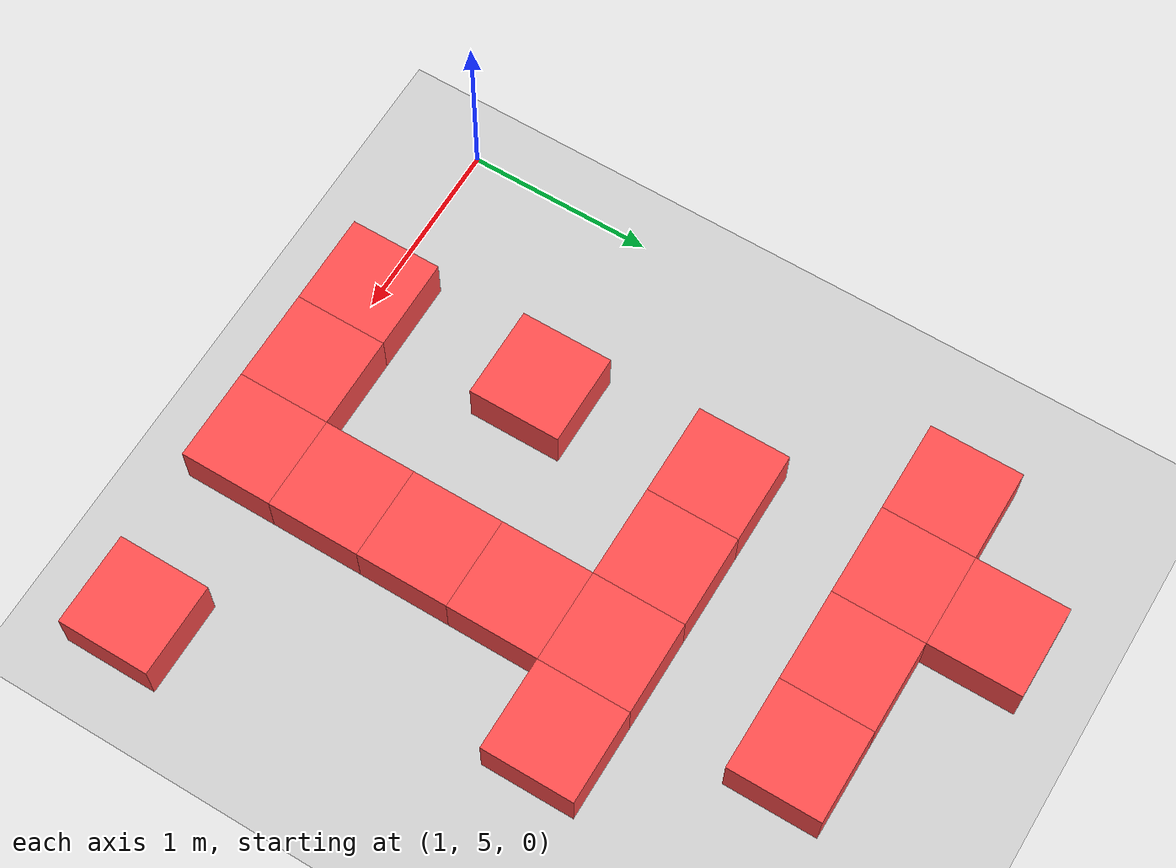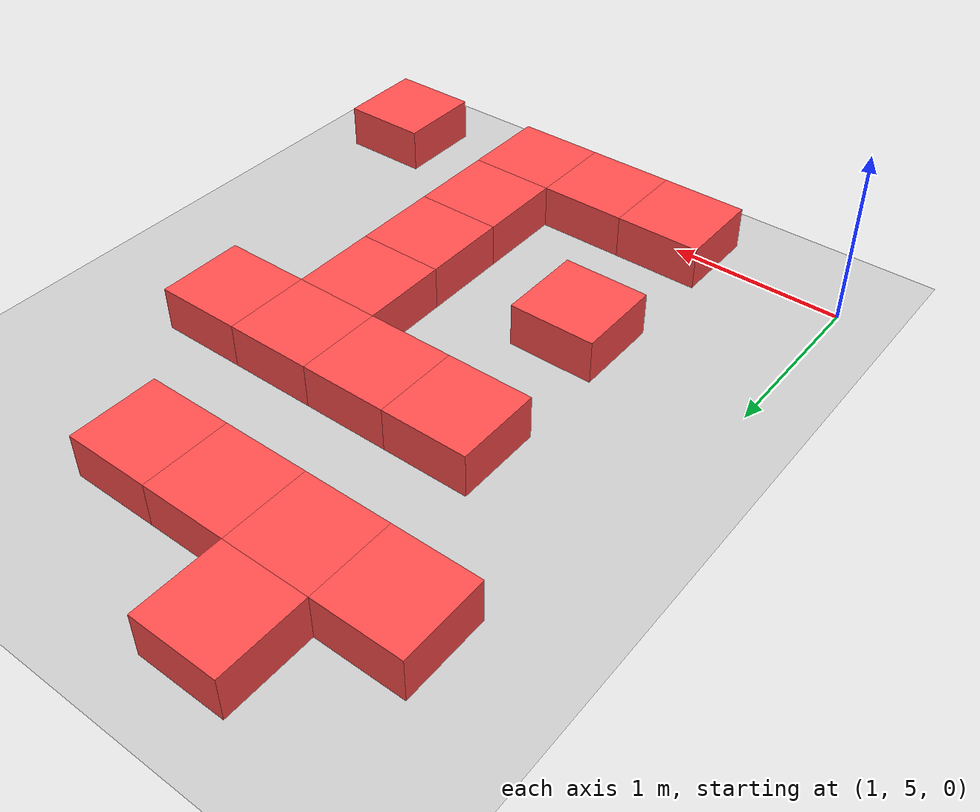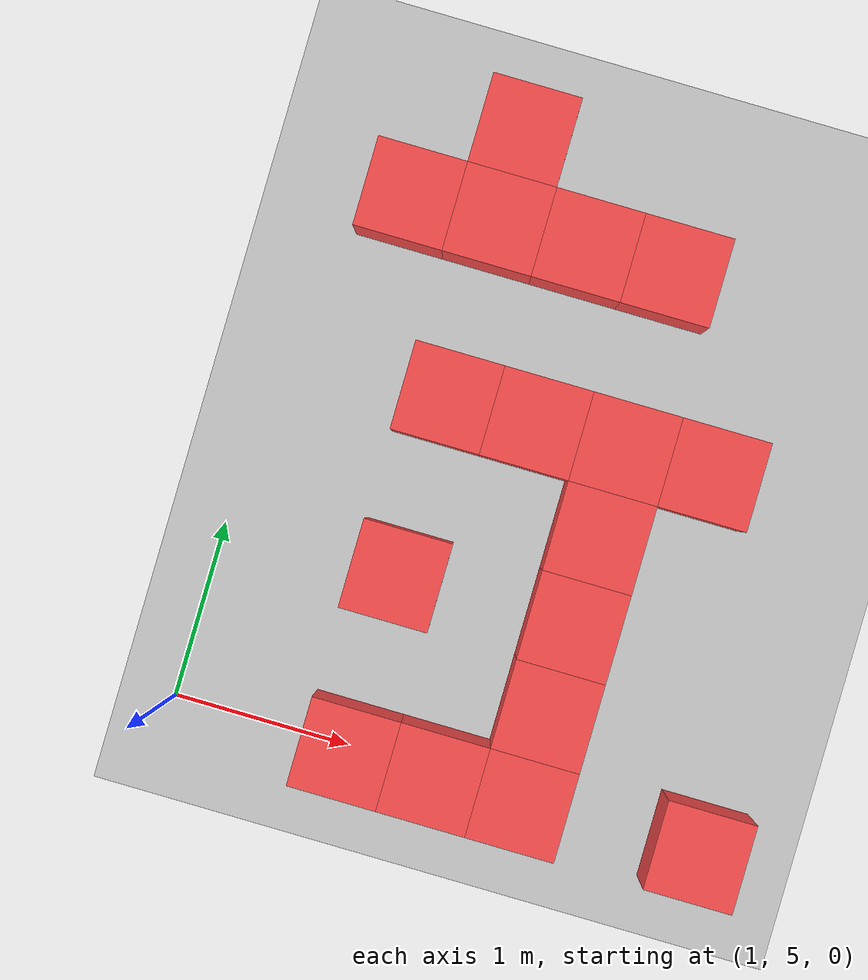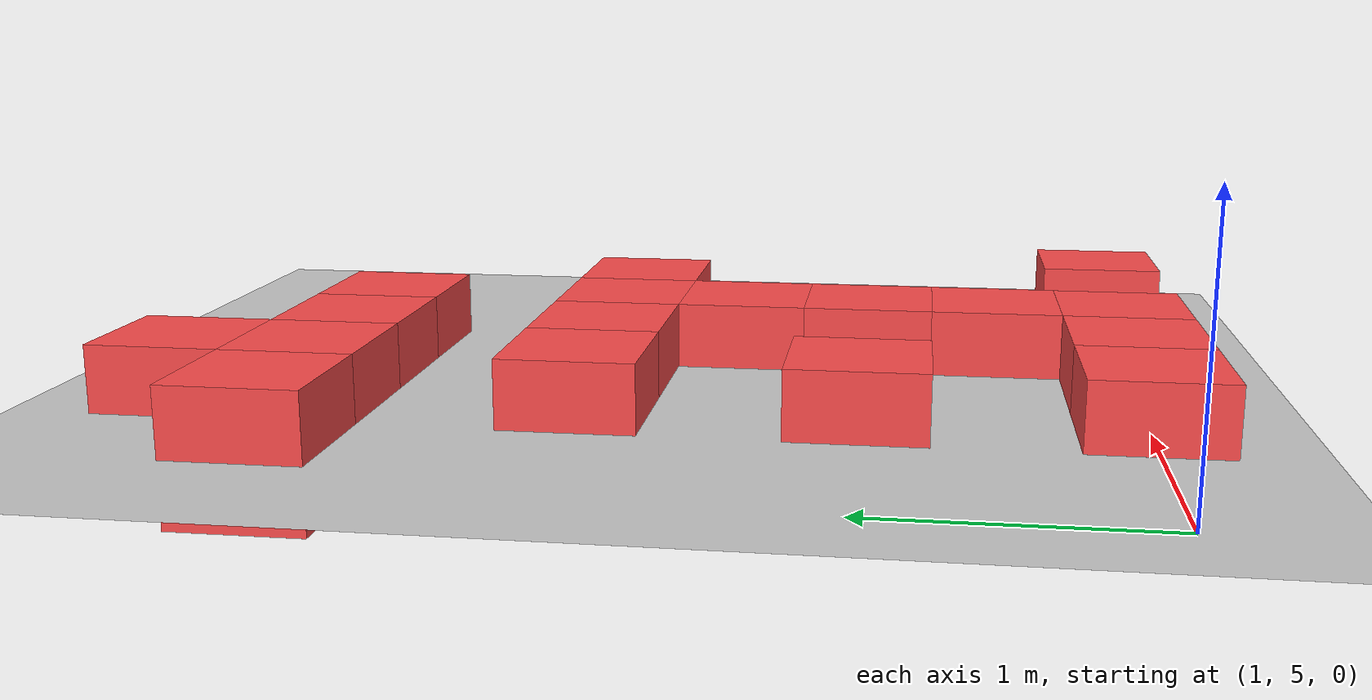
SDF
<sdf version="1.6">
 <world name="default">
  <model name="ground_plane">
   <static>1</static>
   <link name="link">
    <collision name="collision">
     <geometry><plane><normal>0 0 1</normal><size>100 100</size></plane></geometry>
     <surface><friction><ode><mu>100</mu><mu2>50</mu2></ode></friction></surface>
    </collision>
    <visual name="visual">
     <cast_shadows>0</cast_shadows>
     <geometry><plane><normal>0 0 1</normal><size>100 100</size></plane></geometry>
     <material>
      <script><uri>file://media/materials/scripts/gazebo.material</uri><name>Gazebo/Grey</name></script>
     </material>
    </visual>
   </link>
  </model>
  <model name="Box_Red_91">
   <link name="link_0">
    <inertial>
     <mass>1</mass>
     <inertia>
      <ixx>0.166667</ixx>
      <ixy>0</ixy>
      <ixz>0</ixz>
      <iyy>0.166667</iyy>
      <iyz>0</iyz>
      <izz>0.166667</izz>
     </inertia>
    </inertial>
    <visual name="visual">
     <geometry><box><size>0.5 0.5 0.5</size></box></geometry>
     <material>
      <lighting>1</lighting>
      <script><uri>file://media/materials/scripts/gazebo.material</uri><name>Gazebo/Grey</name></script>
      <ambient>1 0.3 0.3 1</ambient>
      <diffuse>0.7 0.7 0.7 1</diffuse>
      <specular>0.01 0.01 0.01 1</specular>
      <emissive>0 0 0 1</emissive>
      <shader type="vertex"><normal_map>__default__</normal_map></shader>
     </material>
    </visual>
    <collision name="collision">
     <geometry><box><size>0.5 0.5 0.5</size></box></geometry>
     <surface>
      <friction>
       <ode><mu>1</mu><mu2>1</mu2><fdir1>0 0 0</fdir1><slip1>0</slip1><slip2>0</slip2></ode>
       <torsional>
        <coefficient>1</coefficient>
        <patch_radius>0</patch_radius>
        <surface_radius>0</surface_radius>
        <use_patch_radius>1</use_patch_radius>
        <ode><slip>0</slip></ode>
       </torsional>
      </friction>
      <bounce><restitution_coefficient>0</restitution_coefficient><threshold>1e+06</threshold></bounce>
      <contact>
       <collide_without_contact>0</collide_without_contact>
       <collide_without_contact_bitmask>1</collide_without_contact_bitmask>
       <collide_bitmask>1</collide_bitmask>
       <ode>
        <soft_cfm>0</soft_cfm>
        <soft_erp>0.2</soft_erp>
        <kp>1e+13</kp>
        <kd>1</kd>
        <max_vel>0.01</max_vel>
        <min_depth>0</min_depth>
       </ode>
       <bullet>
        <split_impulse>1</split_impulse>
        <split_impulse_penetration_threshold>-0.01</split_impulse_penetration_threshold>
        <soft_cfm>0</soft_cfm>
        <soft_erp>0.2</soft_erp>
        <kp>1e+13</kp>
        <kd>1</kd>
       </bullet>
      </contact>
     </surface>
    </collision>
   </link>
   <static>0</static>
   <pose>1.500 8.000 0.000 0 0 0</pose>
  </model>
  <model name="Box_Red_110">
   <link name="link_0">
    <inertial>
     <mass>1</mass>
     <inertia>
      <ixx>0.166667</ixx>
      <ixy>0</ixy>
      <ixz>0</ixz>
      <iyy>0.166667</iyy>
      <iyz>0</iyz>
      <izz>0.166667</izz>
     </inertia>
    </inertial>
    <visual name="visual">
     <geometry><box><size>0.5 0.5 0.5</size></box></geometry>
     <material>
      <lighting>1</lighting>
      <script><uri>file://media/materials/scripts/gazebo.material</uri><name>Gazebo/Grey</name></script>
      <ambient>1 0.3 0.3 1</ambient>
      <diffuse>0.7 0.7 0.7 1</diffuse>
      <specular>0.01 0.01 0.01 1</specular>
      <emissive>0 0 0 1</emissive>
      <shader type="vertex"><normal_map>__default__</normal_map></shader>
     </material>
    </visual>
    <collision name="collision">
     <geometry><box><size>0.5 0.5 0.5</size></box></geometry>
     <surface>
      <friction>
       <ode><mu>1</mu><mu2>1</mu2><fdir1>0 0 0</fdir1><slip1>0</slip1><slip2>0</slip2></ode>
       <torsional>
        <coefficient>1</coefficient>
        <patch_radius>0</patch_radius>
        <surface_radius>0</surface_radius>
        <use_patch_radius>1</use_patch_radius>
        <ode><slip>0</slip></ode>
       </torsional>
      </friction>
      <bounce><restitution_coefficient>0</restitution_coefficient><threshold>1e+06</threshold></bounce>
      <contact>
       <collide_without_contact>0</collide_without_contact>
       <collide_without_contact_bitmask>1</collide_without_contact_bitmask>
       <collide_bitmask>1</collide_bitmask>
       <ode>
        <soft_cfm>0</soft_cfm>
        <soft_erp>0.2</soft_erp>
        <kp>1e+13</kp>
        <kd>1</kd>
        <max_vel>0.01</max_vel>
        <min_depth>0</min_depth>
       </ode>
       <bullet>
        <split_impulse>1</split_impulse>
        <split_impulse_penetration_threshold>-0.01</split_impulse_penetration_threshold>
        <soft_cfm>0</soft_cfm>
        <soft_erp>0.2</soft_erp>
        <kp>1e+13</kp>
        <kd>1</kd>
       </bullet>
      </contact>
     </surface>
    </collision>
   </link>
   <static>0</static>
   <pose>2.000 5.000 0.000 0 0 0</pose>
  </model>
  <model name="Box_Red_112">
   <link name="link_0">
    <inertial>
     <mass>1</mass>
     <inertia>
      <ixx>0.166667</ixx>
      <ixy>0</ixy>
      <ixz>0</ixz>
      <iyy>0.166667</iyy>
      <iyz>0</iyz>
      <izz>0.166667</izz>
     </inertia>
    </inertial>
    <visual name="visual">
     <geometry><box><size>0.5 0.5 0.5</size></box></geometry>
     <material>
      <lighting>1</lighting>
      <script><uri>file://media/materials/scripts/gazebo.material</uri><name>Gazebo/Grey</name></script>
      <ambient>1 0.3 0.3 1</ambient>
      <diffuse>0.7 0.7 0.7 1</diffuse>
      <specular>0.01 0.01 0.01 1</specular>
      <emissive>0 0 0 1</emissive>
      <shader type="vertex"><normal_map>__default__</normal_map></shader>
     </material>
    </visual>
    <collision name="collision">
     <geometry><box><size>0.5 0.5 0.5</size></box></geometry>
     <surface>
      <friction>
       <ode><mu>1</mu><mu2>1</mu2><fdir1>0 0 0</fdir1><slip1>0</slip1><slip2>0</slip2></ode>
       <torsional>
        <coefficient>1</coefficient>
        <patch_radius>0</patch_radius>
        <surface_radius>0</surface_radius>
        <use_patch_radius>1</use_patch_radius>
        <ode><slip>0</slip></ode>
       </torsional>
      </friction>
      <bounce><restitution_coefficient>0</restitution_coefficient><threshold>1e+06</threshold></bounce>
      <contact>
       <collide_without_contact>0</collide_without_contact>
       <collide_without_contact_bitmask>1</collide_without_contact_bitmask>
       <collide_bitmask>1</collide_bitmask>
       <ode>
        <soft_cfm>0</soft_cfm>
        <soft_erp>0.2</soft_erp>
        <kp>1e+13</kp>
        <kd>1</kd>
        <max_vel>0.01</max_vel>
        <min_depth>0</min_depth>
       </ode>
       <bullet>
        <split_impulse>1</split_impulse>
        <split_impulse_penetration_threshold>-0.01</split_impulse_penetration_threshold>
        <soft_cfm>0</soft_cfm>
        <soft_erp>0.2</soft_erp>
        <kp>1e+13</kp>
        <kd>1</kd>
       </bullet>
      </contact>
     </surface>
    </collision>
   </link>
   <static>0</static>
   <pose>2.000 6.000 0.000 0 0 0</pose>
  </model>
  <model name="Box_Red_114">
   <link name="link_0">
    <inertial>
     <mass>1</mass>
     <inertia>
      <ixx>0.166667</ixx>
      <ixy>0</ixy>
      <ixz>0</ixz>
      <iyy>0.166667</iyy>
      <iyz>0</iyz>
      <izz>0.166667</izz>
     </inertia>
    </inertial>
    <visual name="visual">
     <geometry><box><size>0.5 0.5 0.5</size></box></geometry>
     <material>
      <lighting>1</lighting>
      <script><uri>file://media/materials/scripts/gazebo.material</uri><name>Gazebo/Grey</name></script>
      <ambient>1 0.3 0.3 1</ambient>
      <diffuse>0.7 0.7 0.7 1</diffuse>
      <specular>0.01 0.01 0.01 1</specular>
      <emissive>0 0 0 1</emissive>
      <shader type="vertex"><normal_map>__default__</normal_map></shader>
     </material>
    </visual>
    <collision name="collision">
     <geometry><box><size>0.5 0.5 0.5</size></box></geometry>
     <surface>
      <friction>
       <ode><mu>1</mu><mu2>1</mu2><fdir1>0 0 0</fdir1><slip1>0</slip1><slip2>0</slip2></ode>
       <torsional>
        <coefficient>1</coefficient>
        <patch_radius>0</patch_radius>
        <surface_radius>0</surface_radius>
        <use_patch_radius>1</use_patch_radius>
        <ode><slip>0</slip></ode>
       </torsional>
      </friction>
      <bounce><restitution_coefficient>0</restitution_coefficient><threshold>1e+06</threshold></bounce>
      <contact>
       <collide_without_contact>0</collide_without_contact>
       <collide_without_contact_bitmask>1</collide_without_contact_bitmask>
       <collide_bitmask>1</collide_bitmask>
       <ode>
        <soft_cfm>0</soft_cfm>
        <soft_erp>0.2</soft_erp>
        <kp>1e+13</kp>
        <kd>1</kd>
        <max_vel>0.01</max_vel>
        <min_depth>0</min_depth>
       </ode>
       <bullet>
        <split_impulse>1</split_impulse>
        <split_impulse_penetration_threshold>-0.01</split_impulse_penetration_threshold>
        <soft_cfm>0</soft_cfm>
        <soft_erp>0.2</soft_erp>
        <kp>1e+13</kp>
        <kd>1</kd>
       </bullet>
      </contact>
     </surface>
    </collision>
   </link>
   <static>0</static>
   <pose>2.000 7.000 0.000 0 0 0</pose>
  </model>
  <model name="Box_Red_116">
   <link name="link_0">
    <inertial>
     <mass>1</mass>
     <inertia>
      <ixx>0.166667</ixx>
      <ixy>0</ixy>
      <ixz>0</ixz>
      <iyy>0.166667</iyy>
      <iyz>0</iyz>
      <izz>0.166667</izz>
     </inertia>
    </inertial>
    <visual name="visual">
     <geometry><box><size>0.5 0.5 0.5</size></box></geometry>
     <material>
      <lighting>1</lighting>
      <script><uri>file://media/materials/scripts/gazebo.material</uri><name>Gazebo/Grey</name></script>
      <ambient>1 0.3 0.3 1</ambient>
      <diffuse>0.7 0.7 0.7 1</diffuse>
      <specular>0.01 0.01 0.01 1</specular>
      <emissive>0 0 0 1</emissive>
      <shader type="vertex"><normal_map>__default__</normal_map></shader>
     </material>
    </visual>
    <collision name="collision">
     <geometry><box><size>0.5 0.5 0.5</size></box></geometry>
     <surface>
      <friction>
       <ode><mu>1</mu><mu2>1</mu2><fdir1>0 0 0</fdir1><slip1>0</slip1><slip2>0</slip2></ode>
       <torsional>
        <coefficient>1</coefficient>
        <patch_radius>0</patch_radius>
        <surface_radius>0</surface_radius>
        <use_patch_radius>1</use_patch_radius>
        <ode><slip>0</slip></ode>
       </torsional>
      </friction>
      <bounce><restitution_coefficient>0</restitution_coefficient><threshold>1e+06</threshold></bounce>
      <contact>
       <collide_without_contact>0</collide_without_contact>
       <collide_without_contact_bitmask>1</collide_without_contact_bitmask>
       <collide_bitmask>1</collide_bitmask>
       <ode>
        <soft_cfm>0</soft_cfm>
        <soft_erp>0.2</soft_erp>
        <kp>1e+13</kp>
        <kd>1</kd>
        <max_vel>0.01</max_vel>
        <min_depth>0</min_depth>
       </ode>
       <bullet>
        <split_impulse>1</split_impulse>
        <split_impulse_penetration_threshold>-0.01</split_impulse_penetration_threshold>
        <soft_cfm>0</soft_cfm>
        <soft_erp>0.2</soft_erp>
        <kp>1e+13</kp>
        <kd>1</kd>
       </bullet>
      </contact>
     </surface>
    </collision>
   </link>
   <static>0</static>
   <pose>2.000 8.000 0.000 0 0 0</pose>
  </model>
  <model name="Box_Red_117">
   <link name="link_0">
    <inertial>
     <mass>1</mass>
     <inertia>
      <ixx>0.166667</ixx>
      <ixy>0</ixy>
      <ixz>0</ixz>
      <iyy>0.166667</iyy>
      <iyz>0</iyz>
      <izz>0.166667</izz>
     </inertia>
    </inertial>
    <visual name="visual">
     <geometry><box><size>0.5 0.5 0.5</size></box></geometry>
     <material>
      <lighting>1</lighting>
      <script><uri>file://media/materials/scripts/gazebo.material</uri><name>Gazebo/Grey</name></script>
      <ambient>1 0.3 0.3 1</ambient>
      <diffuse>0.7 0.7 0.7 1</diffuse>
      <specular>0.01 0.01 0.01 1</specular>
      <emissive>0 0 0 1</emissive>
      <shader type="vertex"><normal_map>__default__</normal_map></shader>
     </material>
    </visual>
    <collision name="collision">
     <geometry><box><size>0.5 0.5 0.5</size></box></geometry>
     <surface>
      <friction>
       <ode><mu>1</mu><mu2>1</mu2><fdir1>0 0 0</fdir1><slip1>0</slip1><slip2>0</slip2></ode>
       <torsional>
        <coefficient>1</coefficient>
        <patch_radius>0</patch_radius>
        <surface_radius>0</surface_radius>
        <use_patch_radius>1</use_patch_radius>
        <ode><slip>0</slip></ode>
       </torsional>
      </friction>
      <bounce><restitution_coefficient>0</restitution_coefficient><threshold>1e+06</threshold></bounce>
      <contact>
       <collide_without_contact>0</collide_without_contact>
       <collide_without_contact_bitmask>1</collide_without_contact_bitmask>
       <collide_bitmask>1</collide_bitmask>
       <ode>
        <soft_cfm>0</soft_cfm>
        <soft_erp>0.2</soft_erp>
        <kp>1e+13</kp>
        <kd>1</kd>
        <max_vel>0.01</max_vel>
        <min_depth>0</min_depth>
       </ode>
       <bullet>
        <split_impulse>1</split_impulse>
        <split_impulse_penetration_threshold>-0.01</split_impulse_penetration_threshold>
        <soft_cfm>0</soft_cfm>
        <soft_erp>0.2</soft_erp>
        <kp>1e+13</kp>
        <kd>1</kd>
       </bullet>
      </contact>
     </surface>
    </collision>
   </link>
   <static>0</static>
   <pose>2.000 8.500 0.000 0 0 0</pose>
  </model>
  <model name="Box_Red_135">
   <link name="link_0">
    <inertial>
     <mass>1</mass>
     <inertia>
      <ixx>0.166667</ixx>
      <ixy>0</ixy>
      <ixz>0</ixz>
      <iyy>0.166667</iyy>
      <iyz>0</iyz>
      <izz>0.166667</izz>
     </inertia>
    </inertial>
    <visual name="visual">
     <geometry><box><size>0.5 0.5 0.5</size></box></geometry>
     <material>
      <lighting>1</lighting>
      <script><uri>file://media/materials/scripts/gazebo.material</uri><name>Gazebo/Grey</name></script>
      <ambient>1 0.3 0.3 1</ambient>
      <diffuse>0.7 0.7 0.7 1</diffuse>
      <specular>0.01 0.01 0.01 1</specular>
      <emissive>0 0 0 1</emissive>
      <shader type="vertex"><normal_map>__default__</normal_map></shader>
     </material>
    </visual>
    <collision name="collision">
     <geometry><box><size>0.5 0.5 0.5</size></box></geometry>
     <surface>
      <friction>
       <ode><mu>1</mu><mu2>1</mu2><fdir1>0 0 0</fdir1><slip1>0</slip1><slip2>0</slip2></ode>
       <torsional>
        <coefficient>1</coefficient>
        <patch_radius>0</patch_radius>
        <surface_radius>0</surface_radius>
        <use_patch_radius>1</use_patch_radius>
        <ode><slip>0</slip></ode>
       </torsional>
      </friction>
      <bounce><restitution_coefficient>0</restitution_coefficient><threshold>1e+06</threshold></bounce>
      <contact>
       <collide_without_contact>0</collide_without_contact>
       <collide_without_contact_bitmask>1</collide_without_contact_bitmask>
       <collide_bitmask>1</collide_bitmask>
       <ode>
        <soft_cfm>0</soft_cfm>
        <soft_erp>0.2</soft_erp>
        <kp>1e+13</kp>
        <kd>1</kd>
        <max_vel>0.01</max_vel>
        <min_depth>0</min_depth>
       </ode>
       <bullet>
        <split_impulse>1</split_impulse>
        <split_impulse_penetration_threshold>-0.01</split_impulse_penetration_threshold>
        <soft_cfm>0</soft_cfm>
        <soft_erp>0.2</soft_erp>
        <kp>1e+13</kp>
        <kd>1</kd>
       </bullet>
      </contact>
     </surface>
    </collision>
   </link>
   <static>0</static>
   <pose>2.500 5.000 0.000 0 0 0</pose>
  </model>
  <model name="Box_Red_139">
   <link name="link_0">
    <inertial>
     <mass>1</mass>
     <inertia>
      <ixx>0.166667</ixx>
      <ixy>0</ixy>
      <ixz>0</ixz>
      <iyy>0.166667</iyy>
      <iyz>0</iyz>
      <izz>0.166667</izz>
     </inertia>
    </inertial>
    <visual name="visual">
     <geometry><box><size>0.5 0.5 0.5</size></box></geometry>
     <material>
      <lighting>1</lighting>
      <script><uri>file://media/materials/scripts/gazebo.material</uri><name>Gazebo/Grey</name></script>
      <ambient>1 0.3 0.3 1</ambient>
      <diffuse>0.7 0.7 0.7 1</diffuse>
      <specular>0.01 0.01 0.01 1</specular>
      <emissive>0 0 0 1</emissive>
      <shader type="vertex"><normal_map>__default__</normal_map></shader>
     </material>
    </visual>
    <collision name="collision">
     <geometry><box><size>0.5 0.5 0.5</size></box></geometry>
     <surface>
      <friction>
       <ode><mu>1</mu><mu2>1</mu2><fdir1>0 0 0</fdir1><slip1>0</slip1><slip2>0</slip2></ode>
       <torsional>
        <coefficient>1</coefficient>
        <patch_radius>0</patch_radius>
        <surface_radius>0</surface_radius>
        <use_patch_radius>1</use_patch_radius>
        <ode><slip>0</slip></ode>
       </torsional>
      </friction>
      <bounce><restitution_coefficient>0</restitution_coefficient><threshold>1e+06</threshold></bounce>
      <contact>
       <collide_without_contact>0</collide_without_contact>
       <collide_without_contact_bitmask>1</collide_without_contact_bitmask>
       <collide_bitmask>1</collide_bitmask>
       <ode>
        <soft_cfm>0</soft_cfm>
        <soft_erp>0.2</soft_erp>
        <kp>1e+13</kp>
        <kd>1</kd>
        <max_vel>0.01</max_vel>
        <min_depth>0</min_depth>
       </ode>
       <bullet>
        <split_impulse>1</split_impulse>
        <split_impulse_penetration_threshold>-0.01</split_impulse_penetration_threshold>
        <soft_cfm>0</soft_cfm>
        <soft_erp>0.2</soft_erp>
        <kp>1e+13</kp>
        <kd>1</kd>
       </bullet>
      </contact>
     </surface>
    </collision>
   </link>
   <static>0</static>
   <pose>2.500 7.000 0.000 0 0 0</pose>
  </model>
  <model name="Box_Red_141">
   <link name="link_0">
    <inertial>
     <mass>1</mass>
     <inertia>
      <ixx>0.166667</ixx>
      <ixy>0</ixy>
      <ixz>0</ixz>
      <iyy>0.166667</iyy>
      <iyz>0</iyz>
      <izz>0.166667</izz>
     </inertia>
    </inertial>
    <visual name="visual">
     <geometry><box><size>0.5 0.5 0.5</size></box></geometry>
     <material>
      <lighting>1</lighting>
      <script><uri>file://media/materials/scripts/gazebo.material</uri><name>Gazebo/Grey</name></script>
      <ambient>1 0.3 0.3 1</ambient>
      <diffuse>0.7 0.7 0.7 1</diffuse>
      <specular>0.01 0.01 0.01 1</specular>
      <emissive>0 0 0 1</emissive>
      <shader type="vertex"><normal_map>__default__</normal_map></shader>
     </material>
    </visual>
    <collision name="collision">
     <geometry><box><size>0.5 0.5 0.5</size></box></geometry>
     <surface>
      <friction>
       <ode><mu>1</mu><mu2>1</mu2><fdir1>0 0 0</fdir1><slip1>0</slip1><slip2>0</slip2></ode>
       <torsional>
        <coefficient>1</coefficient>
        <patch_radius>0</patch_radius>
        <surface_radius>0</surface_radius>
        <use_patch_radius>1</use_patch_radius>
        <ode><slip>0</slip></ode>
       </torsional>
      </friction>
      <bounce><restitution_coefficient>0</restitution_coefficient><threshold>1e+06</threshold></bounce>
      <contact>
       <collide_without_contact>0</collide_without_contact>
       <collide_without_contact_bitmask>1</collide_without_contact_bitmask>
       <collide_bitmask>1</collide_bitmask>
       <ode>
        <soft_cfm>0</soft_cfm>
        <soft_erp>0.2</soft_erp>
        <kp>1e+13</kp>
        <kd>1</kd>
        <max_vel>0.01</max_vel>
        <min_depth>0</min_depth>
       </ode>
       <bullet>
        <split_impulse>1</split_impulse>
        <split_impulse_penetration_threshold>-0.01</split_impulse_penetration_threshold>
        <soft_cfm>0</soft_cfm>
        <soft_erp>0.2</soft_erp>
        <kp>1e+13</kp>
        <kd>1</kd>
       </bullet>
      </contact>
     </surface>
    </collision>
   </link>
   <static>0</static>
   <pose>2.500 8.000 0.000 0 0 0</pose>
  </model>
  <model name="Box_Red_160">
   <link name="link_0">
    <inertial>
     <mass>1</mass>
     <inertia>
      <ixx>0.166667</ixx>
      <ixy>0</ixy>
      <ixz>0</ixz>
      <iyy>0.166667</iyy>
      <iyz>0</iyz>
      <izz>0.166667</izz>
     </inertia>
    </inertial>
    <visual name="visual">
     <geometry><box><size>0.5 0.5 0.5</size></box></geometry>
     <material>
      <lighting>1</lighting>
      <script><uri>file://media/materials/scripts/gazebo.material</uri><name>Gazebo/Grey</name></script>
      <ambient>1 0.3 0.3 1</ambient>
      <diffuse>0.7 0.7 0.7 1</diffuse>
      <specular>0.01 0.01 0.01 1</specular>
      <emissive>0 0 0 1</emissive>
      <shader type="vertex"><normal_map>__default__</normal_map></shader>
     </material>
    </visual>
    <collision name="collision">
     <geometry><box><size>0.5 0.5 0.5</size></box></geometry>
     <surface>
      <friction>
       <ode><mu>1</mu><mu2>1</mu2><fdir1>0 0 0</fdir1><slip1>0</slip1><slip2>0</slip2></ode>
       <torsional>
        <coefficient>1</coefficient>
        <patch_radius>0</patch_radius>
        <surface_radius>0</surface_radius>
        <use_patch_radius>1</use_patch_radius>
        <ode><slip>0</slip></ode>
       </torsional>
      </friction>
      <bounce><restitution_coefficient>0</restitution_coefficient><threshold>1e+06</threshold></bounce>
      <contact>
       <collide_without_contact>0</collide_without_contact>
       <collide_without_contact_bitmask>1</collide_without_contact_bitmask>
       <collide_bitmask>1</collide_bitmask>
       <ode>
        <soft_cfm>0</soft_cfm>
        <soft_erp>0.2</soft_erp>
        <kp>1e+13</kp>
        <kd>1</kd>
        <max_vel>0.01</max_vel>
        <min_depth>0</min_depth>
       </ode>
       <bullet>
        <split_impulse>1</split_impulse>
        <split_impulse_penetration_threshold>-0.01</split_impulse_penetration_threshold>
        <soft_cfm>0</soft_cfm>
        <soft_erp>0.2</soft_erp>
        <kp>1e+13</kp>
        <kd>1</kd>
       </bullet>
      </contact>
     </surface>
    </collision>
   </link>
   <static>0</static>
   <pose>3.000 5.000 0.000 0 0 0</pose>
  </model>
  <model name="Box_Red_161">
   <link name="link_0">
    <inertial>
     <mass>1</mass>
     <inertia>
      <ixx>0.166667</ixx>
      <ixy>0</ixy>
      <ixz>0</ixz>
      <iyy>0.166667</iyy>
      <iyz>0</iyz>
      <izz>0.166667</izz>
     </inertia>
    </inertial>
    <visual name="visual">
     <geometry><box><size>0.5 0.5 0.5</size></box></geometry>
     <material>
      <lighting>1</lighting>
      <script><uri>file://media/materials/scripts/gazebo.material</uri><name>Gazebo/Grey</name></script>
      <ambient>1 0.3 0.3 1</ambient>
      <diffuse>0.7 0.7 0.7 1</diffuse>
      <specular>0.01 0.01 0.01 1</specular>
      <emissive>0 0 0 1</emissive>
      <shader type="vertex"><normal_map>__default__</normal_map></shader>
     </material>
    </visual>
    <collision name="collision">
     <geometry><box><size>0.5 0.5 0.5</size></box></geometry>
     <surface>
      <friction>
       <ode><mu>1</mu><mu2>1</mu2><fdir1>0 0 0</fdir1><slip1>0</slip1><slip2>0</slip2></ode>
       <torsional>
        <coefficient>1</coefficient>
        <patch_radius>0</patch_radius>
        <surface_radius>0</surface_radius>
        <use_patch_radius>1</use_patch_radius>
        <ode><slip>0</slip></ode>
       </torsional>
      </friction>
      <bounce><restitution_coefficient>0</restitution_coefficient><threshold>1e+06</threshold></bounce>
      <contact>
       <collide_without_contact>0</collide_without_contact>
       <collide_without_contact_bitmask>1</collide_without_contact_bitmask>
       <collide_bitmask>1</collide_bitmask>
       <ode>
        <soft_cfm>0</soft_cfm>
        <soft_erp>0.2</soft_erp>
        <kp>1e+13</kp>
        <kd>1</kd>
        <max_vel>0.01</max_vel>
        <min_depth>0</min_depth>
       </ode>
       <bullet>
        <split_impulse>1</split_impulse>
        <split_impulse_penetration_threshold>-0.01</split_impulse_penetration_threshold>
        <soft_cfm>0</soft_cfm>
        <soft_erp>0.2</soft_erp>
        <kp>1e+13</kp>
        <kd>1</kd>
       </bullet>
      </contact>
     </surface>
    </collision>
   </link>
   <static>0</static>
   <pose>3.000 5.500 0.000 0 0 0</pose>
  </model>
  <model name="Box_Red_162">
   <link name="link_0">
    <inertial>
     <mass>1</mass>
     <inertia>
      <ixx>0.166667</ixx>
      <ixy>0</ixy>
      <ixz>0</ixz>
      <iyy>0.166667</iyy>
      <iyz>0</iyz>
      <izz>0.166667</izz>
     </inertia>
    </inertial>
    <visual name="visual">
     <geometry><box><size>0.5 0.5 0.5</size></box></geometry>
     <material>
      <lighting>1</lighting>
      <script><uri>file://media/materials/scripts/gazebo.material</uri><name>Gazebo/Grey</name></script>
      <ambient>1 0.3 0.3 1</ambient>
      <diffuse>0.7 0.7 0.7 1</diffuse>
      <specular>0.01 0.01 0.01 1</specular>
      <emissive>0 0 0 1</emissive>
      <shader type="vertex"><normal_map>__default__</normal_map></shader>
     </material>
    </visual>
    <collision name="collision">
     <geometry><box><size>0.5 0.5 0.5</size></box></geometry>
     <surface>
      <friction>
       <ode><mu>1</mu><mu2>1</mu2><fdir1>0 0 0</fdir1><slip1>0</slip1><slip2>0</slip2></ode>
       <torsional>
        <coefficient>1</coefficient>
        <patch_radius>0</patch_radius>
        <surface_radius>0</surface_radius>
        <use_patch_radius>1</use_patch_radius>
        <ode><slip>0</slip></ode>
       </torsional>
      </friction>
      <bounce><restitution_coefficient>0</restitution_coefficient><threshold>1e+06</threshold></bounce>
      <contact>
       <collide_without_contact>0</collide_without_contact>
       <collide_without_contact_bitmask>1</collide_without_contact_bitmask>
       <collide_bitmask>1</collide_bitmask>
       <ode>
        <soft_cfm>0</soft_cfm>
        <soft_erp>0.2</soft_erp>
        <kp>1e+13</kp>
        <kd>1</kd>
        <max_vel>0.01</max_vel>
        <min_depth>0</min_depth>
       </ode>
       <bullet>
        <split_impulse>1</split_impulse>
        <split_impulse_penetration_threshold>-0.01</split_impulse_penetration_threshold>
        <soft_cfm>0</soft_cfm>
        <soft_erp>0.2</soft_erp>
        <kp>1e+13</kp>
        <kd>1</kd>
       </bullet>
      </contact>
     </surface>
    </collision>
   </link>
   <static>0</static>
   <pose>3.000 6.000 0.000 0 0 0</pose>
  </model>
  <model name="Box_Red_163">
   <link name="link_0">
    <inertial>
     <mass>1</mass>
     <inertia>
      <ixx>0.166667</ixx>
      <ixy>0</ixy>
      <ixz>0</ixz>
      <iyy>0.166667</iyy>
      <iyz>0</iyz>
      <izz>0.166667</izz>
     </inertia>
    </inertial>
    <visual name="visual">
     <geometry><box><size>0.5 0.5 0.5</size></box></geometry>
     <material>
      <lighting>1</lighting>
      <script><uri>file://media/materials/scripts/gazebo.material</uri><name>Gazebo/Grey</name></script>
      <ambient>1 0.3 0.3 1</ambient>
      <diffuse>0.7 0.7 0.7 1</diffuse>
      <specular>0.01 0.01 0.01 1</specular>
      <emissive>0 0 0 1</emissive>
      <shader type="vertex"><normal_map>__default__</normal_map></shader>
     </material>
    </visual>
    <collision name="collision">
     <geometry><box><size>0.5 0.5 0.5</size></box></geometry>
     <surface>
      <friction>
       <ode><mu>1</mu><mu2>1</mu2><fdir1>0 0 0</fdir1><slip1>0</slip1><slip2>0</slip2></ode>
       <torsional>
        <coefficient>1</coefficient>
        <patch_radius>0</patch_radius>
        <surface_radius>0</surface_radius>
        <use_patch_radius>1</use_patch_radius>
        <ode><slip>0</slip></ode>
       </torsional>
      </friction>
      <bounce><restitution_coefficient>0</restitution_coefficient><threshold>1e+06</threshold></bounce>
      <contact>
       <collide_without_contact>0</collide_without_contact>
       <collide_without_contact_bitmask>1</collide_without_contact_bitmask>
       <collide_bitmask>1</collide_bitmask>
       <ode>
        <soft_cfm>0</soft_cfm>
        <soft_erp>0.2</soft_erp>
        <kp>1e+13</kp>
        <kd>1</kd>
        <max_vel>0.01</max_vel>
        <min_depth>0</min_depth>
       </ode>
       <bullet>
        <split_impulse>1</split_impulse>
        <split_impulse_penetration_threshold>-0.01</split_impulse_penetration_threshold>
        <soft_cfm>0</soft_cfm>
        <soft_erp>0.2</soft_erp>
        <kp>1e+13</kp>
        <kd>1</kd>
       </bullet>
      </contact>
     </surface>
    </collision>
   </link>
   <static>0</static>
   <pose>3.000 6.500 0.000 0 0 0</pose>
  </model>
  <model name="Box_Red_164">
   <link name="link_0">
    <inertial>
     <mass>1</mass>
     <inertia>
      <ixx>0.166667</ixx>
      <ixy>0</ixy>
      <ixz>0</ixz>
      <iyy>0.166667</iyy>
      <iyz>0</iyz>
      <izz>0.166667</izz>
     </inertia>
    </inertial>
    <visual name="visual">
     <geometry><box><size>0.5 0.5 0.5</size></box></geometry>
     <material>
      <lighting>1</lighting>
      <script><uri>file://media/materials/scripts/gazebo.material</uri><name>Gazebo/Grey</name></script>
      <ambient>1 0.3 0.3 1</ambient>
      <diffuse>0.7 0.7 0.7 1</diffuse>
      <specular>0.01 0.01 0.01 1</specular>
      <emissive>0 0 0 1</emissive>
      <shader type="vertex"><normal_map>__default__</normal_map></shader>
     </material>
    </visual>
    <collision name="collision">
     <geometry><box><size>0.5 0.5 0.5</size></box></geometry>
     <surface>
      <friction>
       <ode><mu>1</mu><mu2>1</mu2><fdir1>0 0 0</fdir1><slip1>0</slip1><slip2>0</slip2></ode>
       <torsional>
        <coefficient>1</coefficient>
        <patch_radius>0</patch_radius>
        <surface_radius>0</surface_radius>
        <use_patch_radius>1</use_patch_radius>
        <ode><slip>0</slip></ode>
       </torsional>
      </friction>
      <bounce><restitution_coefficient>0</restitution_coefficient><threshold>1e+06</threshold></bounce>
      <contact>
       <collide_without_contact>0</collide_without_contact>
       <collide_without_contact_bitmask>1</collide_without_contact_bitmask>
       <collide_bitmask>1</collide_bitmask>
       <ode>
        <soft_cfm>0</soft_cfm>
        <soft_erp>0.2</soft_erp>
        <kp>1e+13</kp>
        <kd>1</kd>
        <max_vel>0.01</max_vel>
        <min_depth>0</min_depth>
       </ode>
       <bullet>
        <split_impulse>1</split_impulse>
        <split_impulse_penetration_threshold>-0.01</split_impulse_penetration_threshold>
        <soft_cfm>0</soft_cfm>
        <soft_erp>0.2</soft_erp>
        <kp>1e+13</kp>
        <kd>1</kd>
       </bullet>
      </contact>
     </surface>
    </collision>
   </link>
   <static>0</static>
   <pose>3.000 7.000 0.000 0 0 0</pose>
  </model>
  <model name="Box_Red_166">
   <link name="link_0">
    <inertial>
     <mass>1</mass>
     <inertia>
      <ixx>0.166667</ixx>
      <ixy>0</ixy>
      <ixz>0</ixz>
      <iyy>0.166667</iyy>
      <iyz>0</iyz>
      <izz>0.166667</izz>
     </inertia>
    </inertial>
    <visual name="visual">
     <geometry><box><size>0.5 0.5 0.5</size></box></geometry>
     <material>
      <lighting>1</lighting>
      <script><uri>file://media/materials/scripts/gazebo.material</uri><name>Gazebo/Grey</name></script>
      <ambient>1 0.3 0.3 1</ambient>
      <diffuse>0.7 0.7 0.7 1</diffuse>
      <specular>0.01 0.01 0.01 1</specular>
      <emissive>0 0 0 1</emissive>
      <shader type="vertex"><normal_map>__default__</normal_map></shader>
     </material>
    </visual>
    <collision name="collision">
     <geometry><box><size>0.5 0.5 0.5</size></box></geometry>
     <surface>
      <friction>
       <ode><mu>1</mu><mu2>1</mu2><fdir1>0 0 0</fdir1><slip1>0</slip1><slip2>0</slip2></ode>
       <torsional>
        <coefficient>1</coefficient>
        <patch_radius>0</patch_radius>
        <surface_radius>0</surface_radius>
        <use_patch_radius>1</use_patch_radius>
        <ode><slip>0</slip></ode>
       </torsional>
      </friction>
      <bounce><restitution_coefficient>0</restitution_coefficient><threshold>1e+06</threshold></bounce>
      <contact>
       <collide_without_contact>0</collide_without_contact>
       <collide_without_contact_bitmask>1</collide_without_contact_bitmask>
       <collide_bitmask>1</collide_bitmask>
       <ode>
        <soft_cfm>0</soft_cfm>
        <soft_erp>0.2</soft_erp>
        <kp>1e+13</kp>
        <kd>1</kd>
        <max_vel>0.01</max_vel>
        <min_depth>0</min_depth>
       </ode>
       <bullet>
        <split_impulse>1</split_impulse>
        <split_impulse_penetration_threshold>-0.01</split_impulse_penetration_threshold>
        <soft_cfm>0</soft_cfm>
        <soft_erp>0.2</soft_erp>
        <kp>1e+13</kp>
        <kd>1</kd>
       </bullet>
      </contact>
     </surface>
    </collision>
   </link>
   <static>0</static>
   <pose>3.000 8.000 0.000 0 0 0</pose>
  </model>
  <model name="Box_Red_189">
   <link name="link_0">
    <inertial>
     <mass>1</mass>
     <inertia>
      <ixx>0.166667</ixx>
      <ixy>0</ixy>
      <ixz>0</ixz>
      <iyy>0.166667</iyy>
      <iyz>0</iyz>
      <izz>0.166667</izz>
     </inertia>
    </inertial>
    <visual name="visual">
     <geometry><box><size>0.5 0.5 0.5</size></box></geometry>
     <material>
      <lighting>1</lighting>
      <script><uri>file://media/materials/scripts/gazebo.material</uri><name>Gazebo/Grey</name></script>
      <ambient>1 0.3 0.3 1</ambient>
      <diffuse>0.7 0.7 0.7 1</diffuse>
      <specular>0.01 0.01 0.01 1</specular>
      <emissive>0 0 0 1</emissive>
      <shader type="vertex"><normal_map>__default__</normal_map></shader>
     </material>
    </visual>
    <collision name="collision">
     <geometry><box><size>0.5 0.5 0.5</size></box></geometry>
     <surface>
      <friction>
       <ode><mu>1</mu><mu2>1</mu2><fdir1>0 0 0</fdir1><slip1>0</slip1><slip2>0</slip2></ode>
       <torsional>
        <coefficient>1</coefficient>
        <patch_radius>0</patch_radius>
        <surface_radius>0</surface_radius>
        <use_patch_radius>1</use_patch_radius>
        <ode><slip>0</slip></ode>
       </torsional>
      </friction>
      <bounce><restitution_coefficient>0</restitution_coefficient><threshold>1e+06</threshold></bounce>
      <contact>
       <collide_without_contact>0</collide_without_contact>
       <collide_without_contact_bitmask>1</collide_without_contact_bitmask>
       <collide_bitmask>1</collide_bitmask>
       <ode>
        <soft_cfm>0</soft_cfm>
        <soft_erp>0.2</soft_erp>
        <kp>1e+13</kp>
        <kd>1</kd>
        <max_vel>0.01</max_vel>
        <min_depth>0</min_depth>
       </ode>
       <bullet>
        <split_impulse>1</split_impulse>
        <split_impulse_penetration_threshold>-0.01</split_impulse_penetration_threshold>
        <soft_cfm>0</soft_cfm>
        <soft_erp>0.2</soft_erp>
        <kp>1e+13</kp>
        <kd>1</kd>
       </bullet>
      </contact>
     </surface>
    </collision>
   </link>
   <static>0</static>
   <pose>3.500 7.000 0.000 0 0 0</pose>
  </model>
  <model name="Box_Red_210">
   <link name="link_0">
    <inertial>
     <mass>1</mass>
     <inertia>
      <ixx>0.166667</ixx>
      <ixy>0</ixy>
      <ixz>0</ixz>
      <iyy>0.166667</iyy>
      <iyz>0</iyz>
      <izz>0.166667</izz>
     </inertia>
    </inertial>
    <visual name="visual">
     <geometry><box><size>0.5 0.5 0.5</size></box></geometry>
     <material>
      <lighting>1</lighting>
      <script><uri>file://media/materials/scripts/gazebo.material</uri><name>Gazebo/Grey</name></script>
      <ambient>1 0.3 0.3 1</ambient>
      <diffuse>0.7 0.7 0.7 1</diffuse>
      <specular>0.01 0.01 0.01 1</specular>
      <emissive>0 0 0 1</emissive>
      <shader type="vertex"><normal_map>__default__</normal_map></shader>
     </material>
    </visual>
    <collision name="collision">
     <geometry><box><size>0.5 0.5 0.5</size></box></geometry>
     <surface>
      <friction>
       <ode><mu>1</mu><mu2>1</mu2><fdir1>0 0 0</fdir1><slip1>0</slip1><slip2>0</slip2></ode>
       <torsional>
        <coefficient>1</coefficient>
        <patch_radius>0</patch_radius>
        <surface_radius>0</surface_radius>
        <use_patch_radius>1</use_patch_radius>
        <ode><slip>0</slip></ode>
       </torsional>
      </friction>
      <bounce><restitution_coefficient>0</restitution_coefficient><threshold>1e+06</threshold></bounce>
      <contact>
       <collide_without_contact>0</collide_without_contact>
       <collide_without_contact_bitmask>1</collide_without_contact_bitmask>
       <collide_bitmask>1</collide_bitmask>
       <ode>
        <soft_cfm>0</soft_cfm>
        <soft_erp>0.2</soft_erp>
        <kp>1e+13</kp>
        <kd>1</kd>
        <max_vel>0.01</max_vel>
        <min_depth>0</min_depth>
       </ode>
       <bullet>
        <split_impulse>1</split_impulse>
        <split_impulse_penetration_threshold>-0.01</split_impulse_penetration_threshold>
        <soft_cfm>0</soft_cfm>
        <soft_erp>0.2</soft_erp>
        <kp>1e+13</kp>
        <kd>1</kd>
       </bullet>
      </contact>
     </surface>
    </collision>
   </link>
   <static>0</static>
   <pose>4.000 5.000 0.000 0 0 0</pose>
  </model>
 </world>
</sdf>
